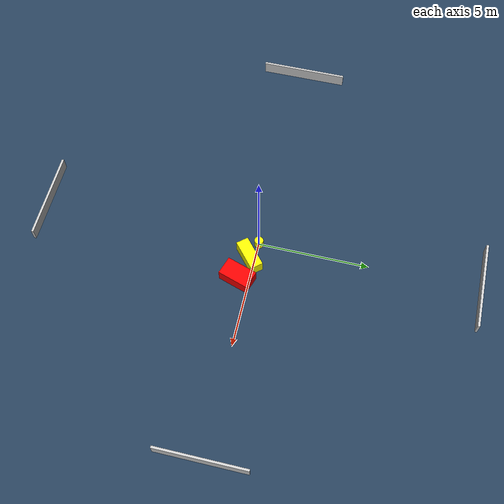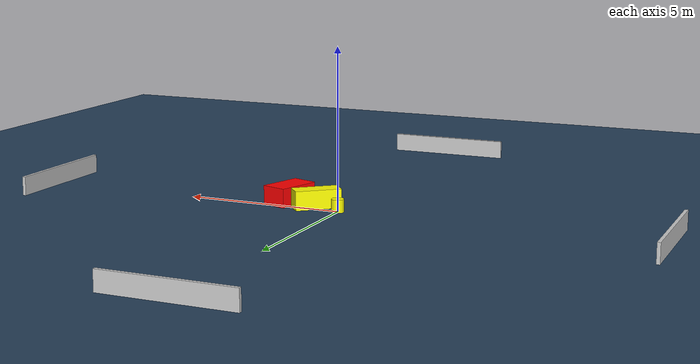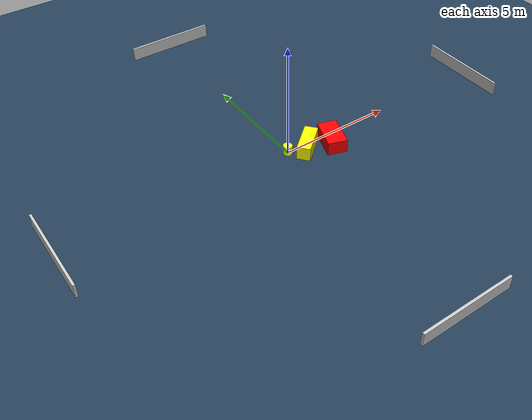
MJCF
<?xml version="1.0" ?>
<mujoco model="generated_environment">
  <option timestep="0.01" integrator="RK4" cone="elliptic"/>
  <default>
    <geom density="1"/>
  </default>
  <asset>
    <texture builtin="gradient" height="3072" name="skybox" rgb1="0.3 0.5 0.7" rgb2="0 0 0" type="skybox" width="512"/>
    <texture builtin="checker" height="300" name="groundplane" rgb1="0.2 0.3 0.4" rgb2="0.1 0.2 0.3" type="2d" width="300"/>
    <material name="groundplane" reflectance="0.2" texrepeat="5 5" texture="groundplane"/>
  </asset>
  <worldbody>
    <light dir="0 0 -1" directional="true" pos="0 0 1.5"/>
    <geom condim="3" friction="0.5 0.005 0.001" material="groundplane" name="floor" pos="0 0 0" size="0 0 0.05" type="plane"/>
    <body name="walls">
      <geom name="wall_1" condim="4" pos="-10.0 0.0 0.3" rgba="0.800000011920929 0.800000011920929 0.800000011920929 1.0" size="0.05 2.0 0.3" type="box"/>
      <geom name="wall_2" condim="4" pos="10.0 0.0 0.3" rgba="0.800000011920929 0.800000011920929 0.800000011920929 1.0" size="0.05 2.0 0.3" type="box"/>
      <geom name="wall_3" condim="4" pos="0.0 -10.0 0.3" rgba="0.800000011920929 0.800000011920929 0.800000011920929 1.0" size="2.0 0.05 0.3" type="box"/>
      <geom name="wall_4" condim="4" pos="0.0 10.0 0.3" rgba="0.800000011920929 0.800000011920929 0.800000011920929 1.0" size="2.0 0.05 0.3" type="box"/>
    </body>
    <body name="robot">
      <joint name="joint_x" type="slide" pos="0 0 0" axis="1 0 0"/>
      <joint name="joint_y" type="slide" pos="0 0 0" axis="0 1 0"/>
      <geom name="robot" type="cylinder" pos="0.0 0.0 0.2" size="0.2 0.2 0.0" mass="5.0" friction="1.0 0.005 0.0001" condim="4" rgba="1.0 1.0 0.0 1.0"/>
    </body>
    <body name="obstacle_1_movable">
      <geom name="obstacle_1_movable" condim="4" pos="0.8194727241481038 -0.24375903317695374 0.3" euler="0 0 40.58250570914831" friction="0.0 0.005 0.001" rgba="1.0 1.0 0.0 1.0" size="0.7241948876040578 0.2841549541869816 0.3" type="box" mass="0.1"/>
      <joint type="free"/>
    </body>
    <body name="obstacle_2_static">
      <geom name="obstacle_2_static" condim="4" pos="1.868765856097313 -0.5290746258307398 0.3" euler="0 0 341.9383909469554" friction="0.0 0.005 0.001" rgba="1.0 0.0 0.0 1.0" size="0.41767069670486434 0.7046934896078056 0.3" type="box"/>
    </body>
  </worldbody>
  <actuator>
    <motor name="actuator_x" joint="joint_x" gear="1" ctrlrange="-1 1"/>
    <motor name="actuator_y" joint="joint_y" gear="1" ctrlrange="-1 1"/>
  </actuator>
</mujoco>
